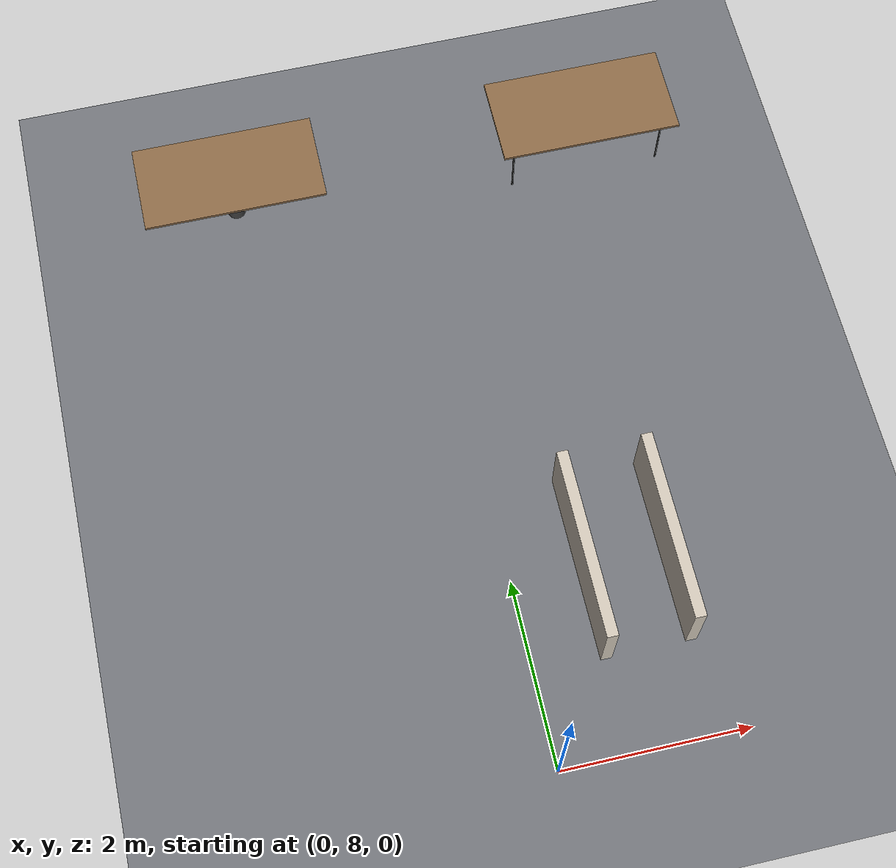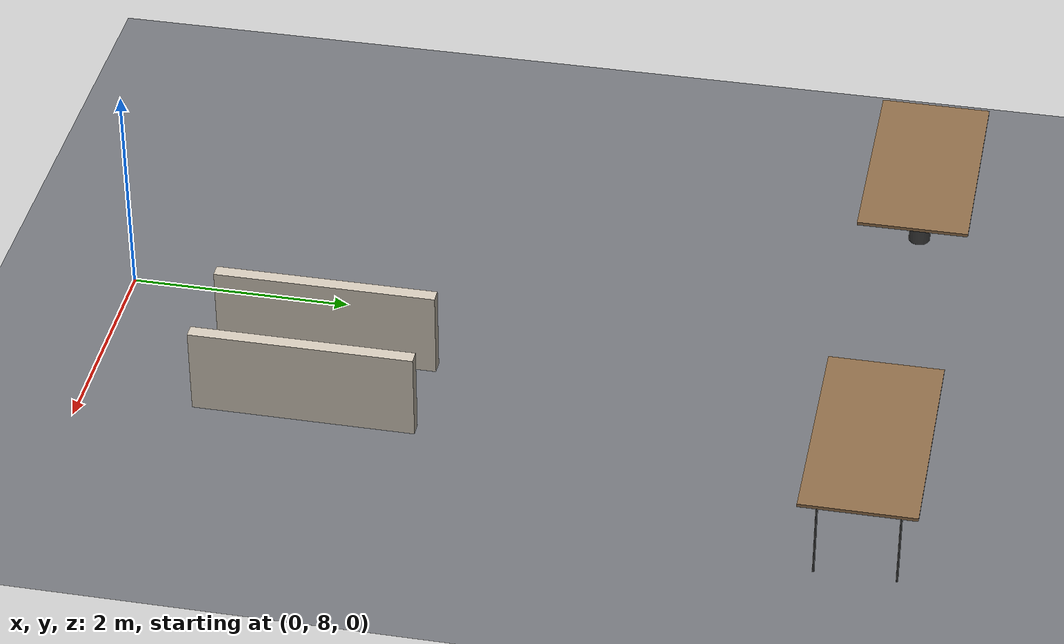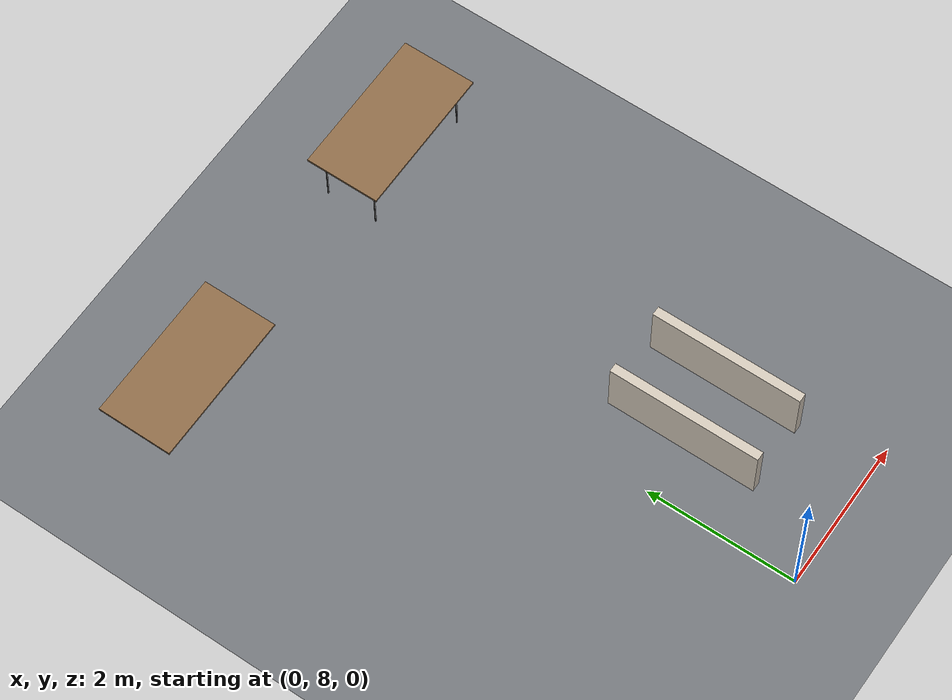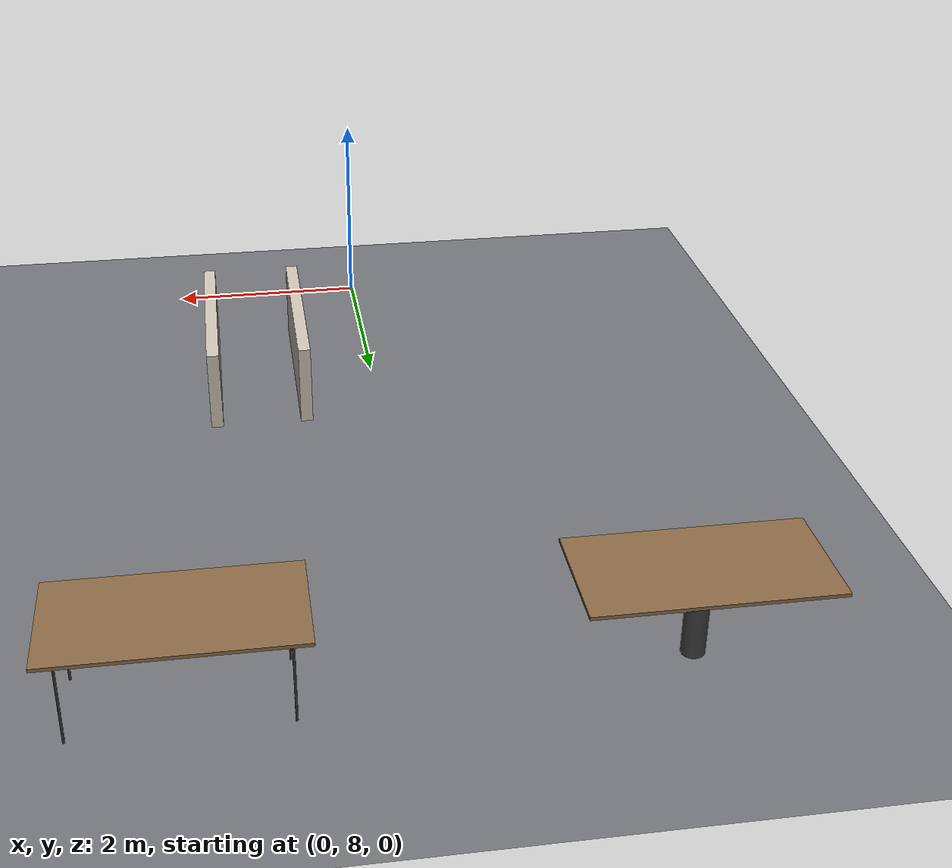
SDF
<sdf version="1.10">
 <world name="world_demo">
  <model name="ground_plane">
   <static>true</static>
   <link name="link">
    <collision name="collision">
     <geometry><plane><normal>0 0 1</normal><size>0.10000000000000001 0.10000000000000001</size></plane></geometry>
     <surface><friction><ode><mu>1.5</mu><mu2>1.5</mu2></ode></friction></surface>
    </collision>
    <visual name="ground_visual">
     <geometry><plane><normal>0 0 1</normal><size>500 500</size></plane></geometry>
     <material>
      <ambient>0.449999988 0.460000008 0.479999989 1</ambient>
      <diffuse>0.449999988 0.460000008 0.479999989 1</diffuse>
      <specular>0.100000001 0.100000001 0.100000001 1</specular>
     </material>
    </visual>
    <pose>0 0 -0.001 0 0 0</pose>
    <inertial>
     <mass>1</mass>
     <inertia><ixx>1</ixx><ixy>0</ixy><ixz>0</ixz><iyy>1</iyy><iyz>0</iyz><izz>1</izz></inertia>
    </inertial>
   </link>
  </model>
  <model name="table_round_pedestal_01">
   <static>true</static>
   <pose>-2 15 0 0 0 0</pose>
   <link name="link">
    <collision name="pedestal_collision">
     <pose>0 0 0.40000000000000002 0 0 0</pose>
     <geometry>
      <cylinder><radius>0.10000000000000001</radius><length>0.80000000000000004</length></cylinder>
     </geometry>
    </collision>
    <visual name="pedestal_visual">
     <pose>0 0 0.40000000000000002 0 0 0</pose>
     <geometry>
      <cylinder><radius>0.10000000000000001</radius><length>0.80000000000000004</length></cylinder>
     </geometry>
     <material><ambient>0.25 0.25 0.25 1</ambient><diffuse>0.25 0.25 0.25 1</diffuse></material>
    </visual>
    <collision name="top_collision">
     <pose>0 0 0.81499999999999995 0 0 0</pose>
     <geometry><box><size>2 1 0.029999999999999999</size></box></geometry>
    </collision>
    <visual name="top_visual">
     <pose>0 0 0.81499999999999995 0 0 0</pose>
     <geometry><box><size>2 1 0.029999999999999999</size></box></geometry>
     <material>
      <ambient>0.550000012 0.419999987 0.280000001 1</ambient>
      <diffuse>0.550000012 0.419999987 0.280000001 1</diffuse>
     </material>
    </visual>
    <inertial>
     <mass>1</mass>
     <inertia><ixx>1</ixx><ixy>0</ixy><ixz>0</ixz><iyy>1</iyy><iyz>0</iyz><izz>1</izz></inertia>
    </inertial>
   </link>
  </model>
  <model name="table_four_legs_01">
   <static>true</static>
   <pose>2 15 0 0 0 0</pose>
   <link name="link">
    <collision name="leg_fl_collision">
     <pose>0.84999999999999998 0.34999999999999998 0.40000000000000002 0 0 0</pose>
     <geometry><cylinder><radius>0.01</radius><length>0.80000000000000004</length></cylinder></geometry>
    </collision>
    <visual name="leg_fl_visual">
     <pose>0.84999999999999998 0.34999999999999998 0.40000000000000002 0 0 0</pose>
     <geometry><cylinder><radius>0.01</radius><length>0.80000000000000004</length></cylinder></geometry>
     <material>
      <ambient>0.200000003 0.200000003 0.200000003 1</ambient>
      <diffuse>0.200000003 0.200000003 0.200000003 1</diffuse>
     </material>
    </visual>
    <collision name="leg_fr_collision">
     <pose>0.84999999999999998 -0.34999999999999998 0.40000000000000002 0 0 0</pose>
     <geometry><cylinder><radius>0.01</radius><length>0.80000000000000004</length></cylinder></geometry>
    </collision>
    <visual name="leg_fr_visual">
     <pose>0.84999999999999998 -0.34999999999999998 0.40000000000000002 0 0 0</pose>
     <geometry><cylinder><radius>0.01</radius><length>0.80000000000000004</length></cylinder></geometry>
     <material>
      <ambient>0.200000003 0.200000003 0.200000003 1</ambient>
      <diffuse>0.200000003 0.200000003 0.200000003 1</diffuse>
     </material>
    </visual>
    <collision name="leg_rl_collision">
     <pose>-0.84999999999999998 0.34999999999999998 0.40000000000000002 0 0 0</pose>
     <geometry><cylinder><radius>0.01</radius><length>0.80000000000000004</length></cylinder></geometry>
    </collision>
    <visual name="leg_rl_visual">
     <pose>-0.84999999999999998 0.34999999999999998 0.40000000000000002 0 0 0</pose>
     <geometry><cylinder><radius>0.01</radius><length>0.80000000000000004</length></cylinder></geometry>
     <material>
      <ambient>0.200000003 0.200000003 0.200000003 1</ambient>
      <diffuse>0.200000003 0.200000003 0.200000003 1</diffuse>
     </material>
    </visual>
    <collision name="leg_rr_collision">
     <pose>-0.84999999999999998 -0.34999999999999998 0.40000000000000002 0 0 0</pose>
     <geometry><cylinder><radius>0.01</radius><length>0.80000000000000004</length></cylinder></geometry>
    </collision>
    <visual name="leg_rr_visual">
     <pose>-0.84999999999999998 -0.34999999999999998 0.40000000000000002 0 0 0</pose>
     <geometry><cylinder><radius>0.01</radius><length>0.80000000000000004</length></cylinder></geometry>
     <material>
      <ambient>0.200000003 0.200000003 0.200000003 1</ambient>
      <diffuse>0.200000003 0.200000003 0.200000003 1</diffuse>
     </material>
    </visual>
    <collision name="top_collision">
     <pose>0 0 0.81499999999999995 0 0 0</pose>
     <geometry><box><size>2 1 0.029999999999999999</size></box></geometry>
    </collision>
    <visual name="top_visual">
     <pose>0 0 0.81499999999999995 0 0 0</pose>
     <geometry><box><size>2 1 0.029999999999999999</size></box></geometry>
     <material>
      <ambient>0.550000012 0.419999987 0.280000001 1</ambient>
      <diffuse>0.550000012 0.419999987 0.280000001 1</diffuse>
     </material>
    </visual>
    <inertial>
     <mass>1</mass>
     <inertia><ixx>1</ixx><ixy>0</ixy><ixz>0</ixz><iyy>1</iyy><iyz>0</iyz><izz>1</izz></inertia>
    </inertial>
   </link>
  </model>
  <model name="narrow_passage_0774">
   <static>true</static>
   <pose>1.2 10 0 0 0 0</pose>
   <link name="link">
    <collision name="left_wall_collision">
     <pose>-0.447 0 0.40000000000000002 0 0 0</pose>
     <geometry><box><size>0.12 2 0.80000000000000004</size></box></geometry>
    </collision>
    <visual name="left_wall_visual">
     <pose>-0.447 0 0.40000000000000002 0 0 0</pose>
     <geometry><box><size>0.12 2 0.80000000000000004</size></box></geometry>
     <material>
      <ambient>0.819999993 0.779999971 0.720000029 1</ambient>
      <diffuse>0.819999993 0.779999971 0.720000029 1</diffuse>
     </material>
    </visual>
    <collision name="right_wall_collision">
     <pose>0.447 0 0.40000000000000002 0 0 0</pose>
     <geometry><box><size>0.12 2 0.80000000000000004</size></box></geometry>
    </collision>
    <visual name="right_wall_visual">
     <pose>0.447 0 0.40000000000000002 0 0 0</pose>
     <geometry><box><size>0.12 2 0.80000000000000004</size></box></geometry>
     <material>
      <ambient>0.819999993 0.779999971 0.720000029 1</ambient>
      <diffuse>0.819999993 0.779999971 0.720000029 1</diffuse>
     </material>
    </visual>
    <inertial>
     <mass>1</mass>
     <inertia><ixx>1</ixx><ixy>0</ixy><ixz>0</ixz><iyy>1</iyy><iyz>0</iyz><izz>1</izz></inertia>
    </inertial>
   </link>
  </model>
 </world>
</sdf>
